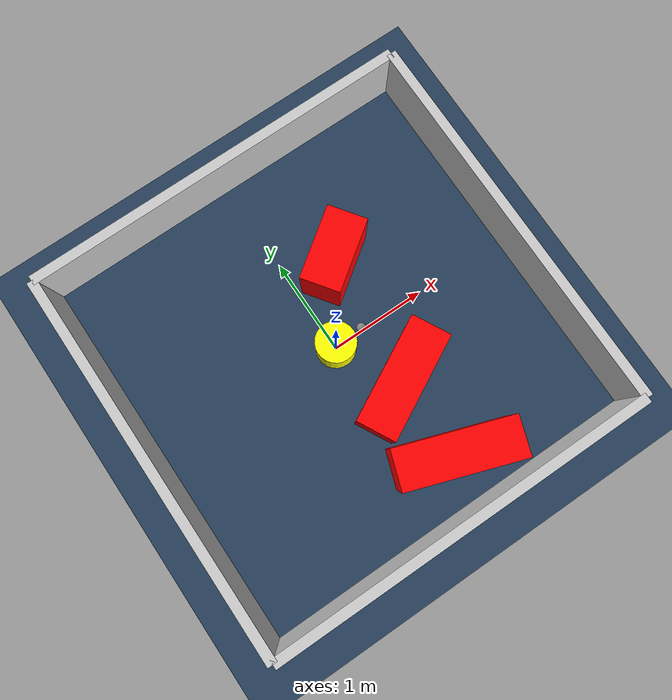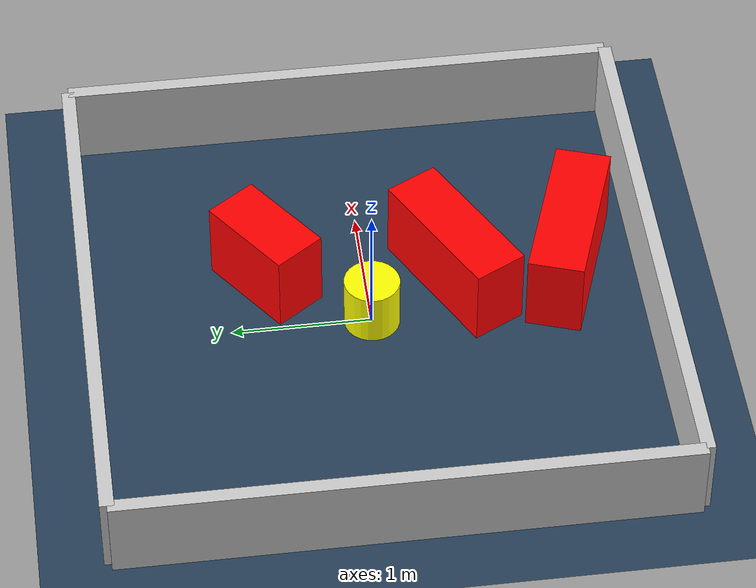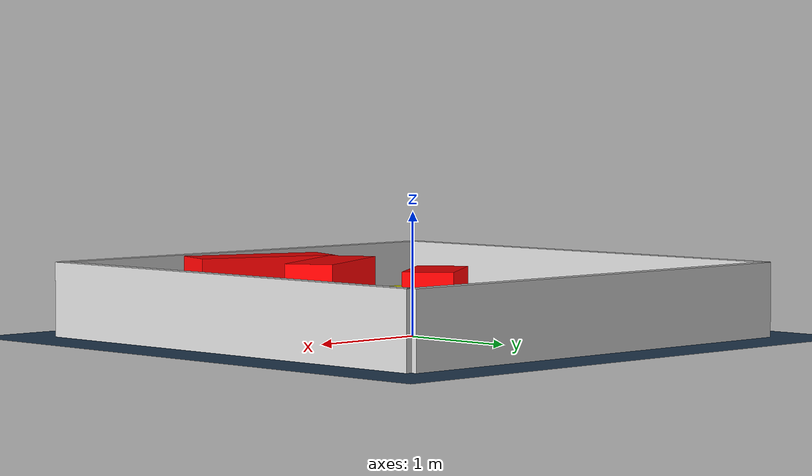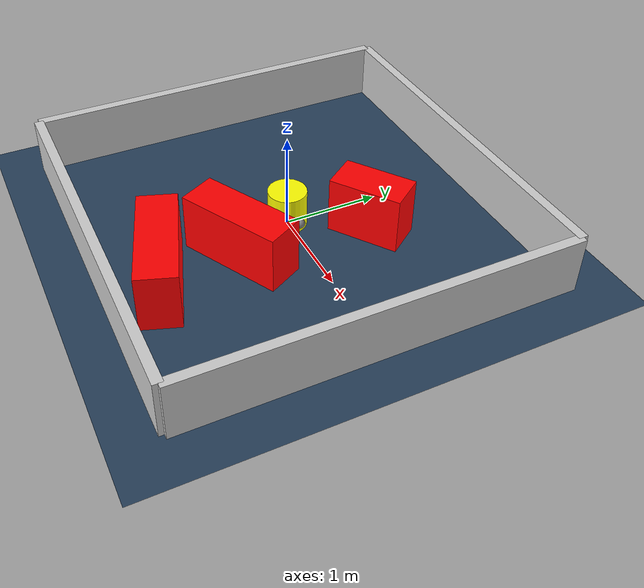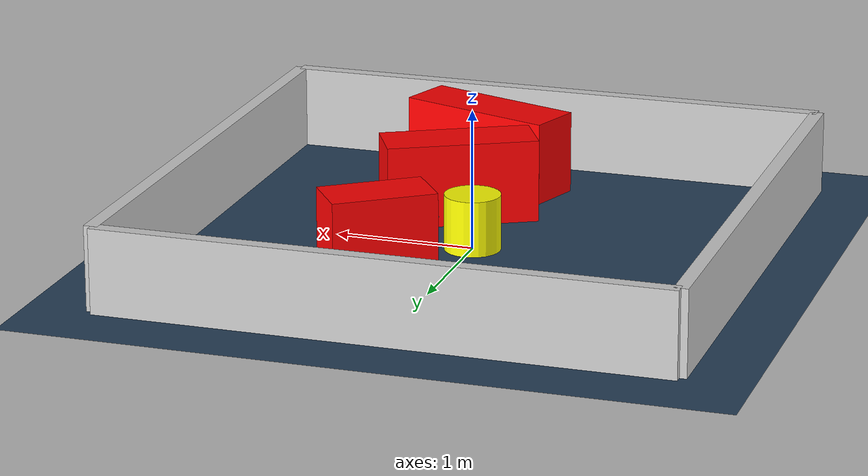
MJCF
<?xml version="1.0" ?>
<mujoco model="generated_environment">
  <option timestep="0.01" integrator="RK4" cone="elliptic"/>
  <default>
    <geom density="1"/>
  </default>
  <asset>
    <texture builtin="gradient" height="3072" rgb1="0.3 0.5 0.7" rgb2="0 0 0" type="skybox" width="512"/>
    <texture builtin="checker" height="300" mark="edge" markrgb="0.8 0.8 0.8" name="groundplane" rgb1="0.2 0.3 0.4" rgb2="0.1 0.2 0.3" type="2d" width="300"/>
    <material name="groundplane" reflectance="0.2" texrepeat="5 5" texture="groundplane" texuniform="true"/>
    <material name="robot" rgba="0.0 1.0 0.0 1"/>
  </asset>
  <worldbody>
    <light dir="0 0 -1" directional="true" pos="0 0 1.5"/>
    <geom condim="4" friction="1.0 0.005 0.001" material="groundplane" name="floor" size="0 0 0.05" type="plane"/>
    <body name="walls">
      <geom name="wall_1" condim="4" pos="-2.0 0.0 0.3" rgba="0.800000011920929 0.800000011920929 0.800000011920929 1.0" size="0.05 2.0 0.3" type="box"/>
      <geom name="wall_2" condim="4" pos="2.0 0.0 0.3" rgba="0.800000011920929 0.800000011920929 0.800000011920929 1.0" size="0.05 2.0 0.3" type="box"/>
      <geom name="wall_3" condim="4" pos="0.0 -2.0 0.3" rgba="0.800000011920929 0.800000011920929 0.800000011920929 1.0" size="2.0 0.05 0.3" type="box"/>
      <geom name="wall_4" condim="4" pos="0.0 2.0 0.3" rgba="0.800000011920929 0.800000011920929 0.800000011920929 1.0" size="2.0 0.05 0.3" type="box"/>
    </body>
    <body name="robot">
      <joint name="joint_x" type="slide" pos="0 0 0" axis="1 0 0"/>
      <joint name="joint_y" type="slide" pos="0 0 0" axis="0 1 0"/>
      <geom name="robot" type="sphere" pos="0.3 0.0 0.2" size="0.05" mass="5." friction="1.0 0.005 0.0001" condim="4" rgba="0.5 0.5 0.5 1.0"/>
      <site name="sensor_ball"/>
    </body>
    <body name="obstacle_movable_1">
      <geom name="obstacle_movable_1" condim="4" pos="0.0 0.0 0.2" euler="0 0 0.0" friction="1.0 0.005 0.001" rgba="1.0 1.0 0.0 1.0" size="0.2 0.2 0.0" type="cylinder" mass="0.1"/>
      <joint type="free"/>
    </body>
    <body name="obstacle_2_static">
      <geom name="obstacle_2_static" condim="4" pos="0.3069338594069284 -0.6352061897175378 0.3" euler="0 0 27.80856999317826" friction="1.0 0.005 0.001" rgba="1 0 0 1" size="0.5449299208672548 0.2 0.3" type="box"/>
    </body>
    <body name="obstacle_3_static">
      <geom name="obstacle_3_static" condim="4" pos="0.3360298434304996 -1.461362119588637 0.3" euler="0 0 160.99339361025065" friction="1.0 0.005 0.001" rgba="1 0 0 1" size="0.5936935166495074 0.2 0.3" type="box"/>
    </body>
    <body name="obstacle_4_static">
      <geom name="obstacle_4_static" condim="4" pos="0.45625404150915916 0.7061020593183633 0.3" euler="0 0 215.61792348502246" friction="1.0 0.005 0.001" rgba="1 0 0 1" size="0.3725228967947788 0.2 0.3" type="box"/>
    </body>
  </worldbody>
  <actuator>
    <motor name="actuator_x" joint="joint_x" gear="1" ctrlrange="-1 1"/>
    <motor name="actuator_y" joint="joint_y" gear="1" ctrlrange="-1 1"/>
  </actuator>
</mujoco>
